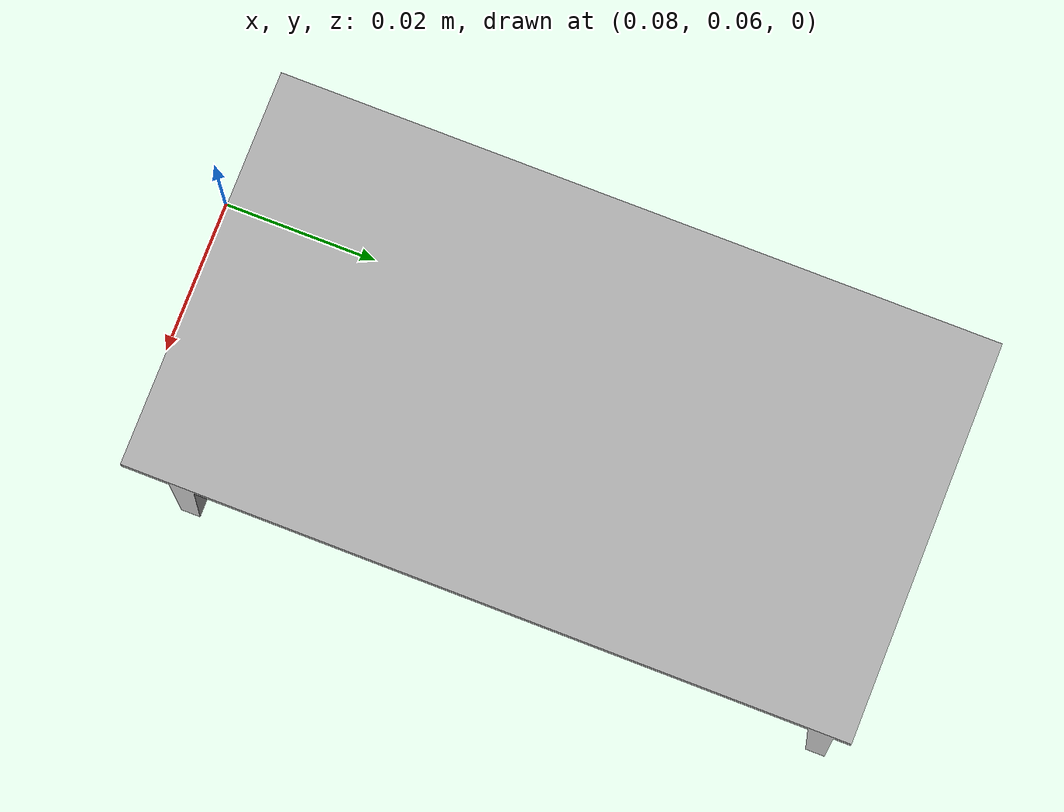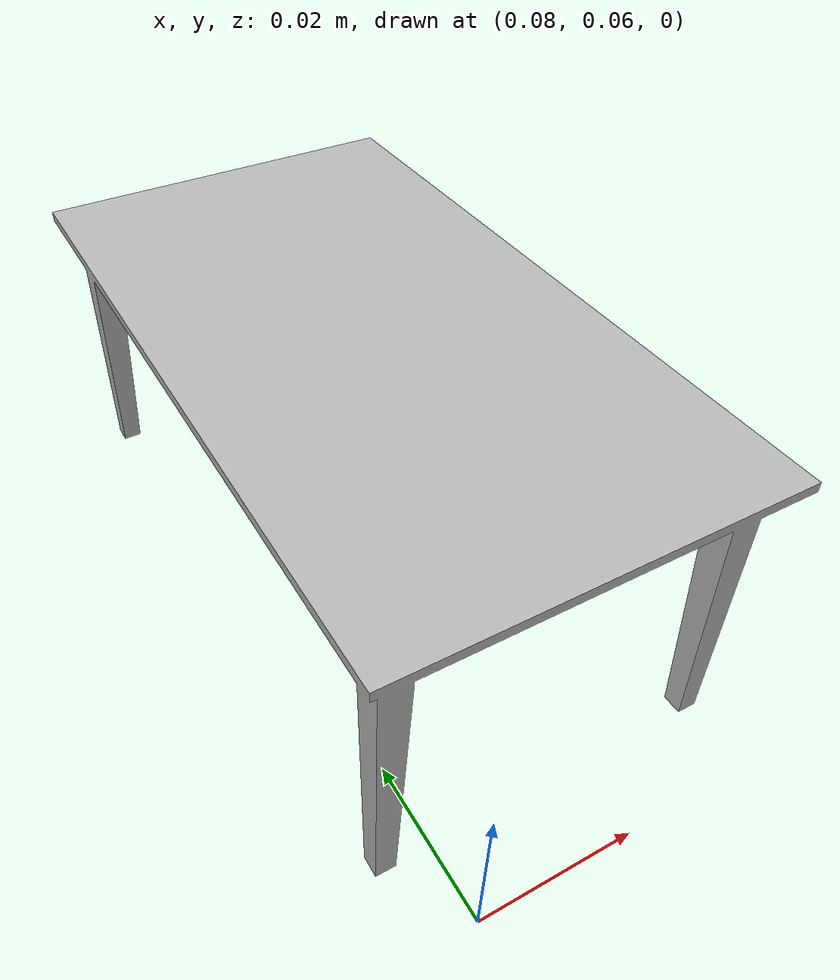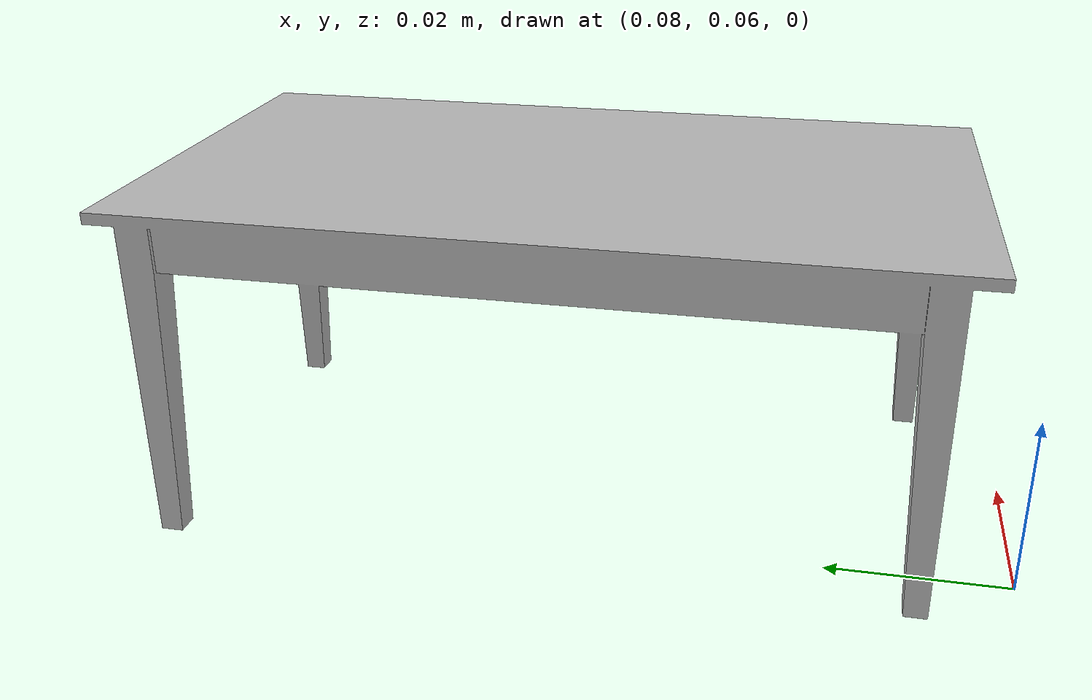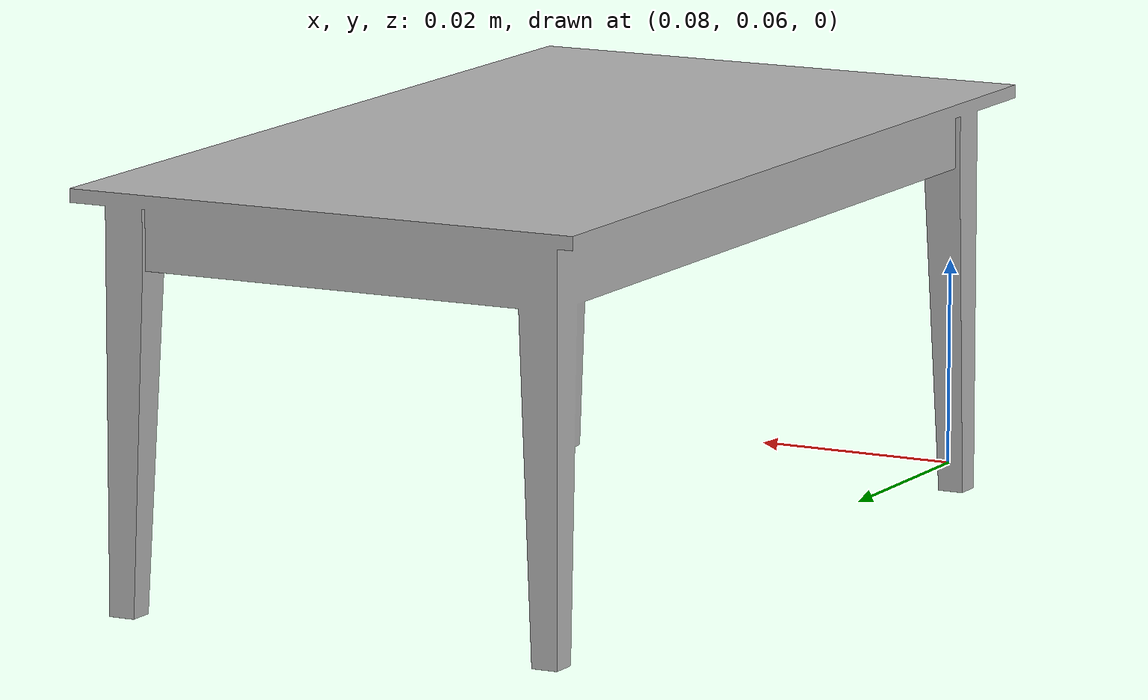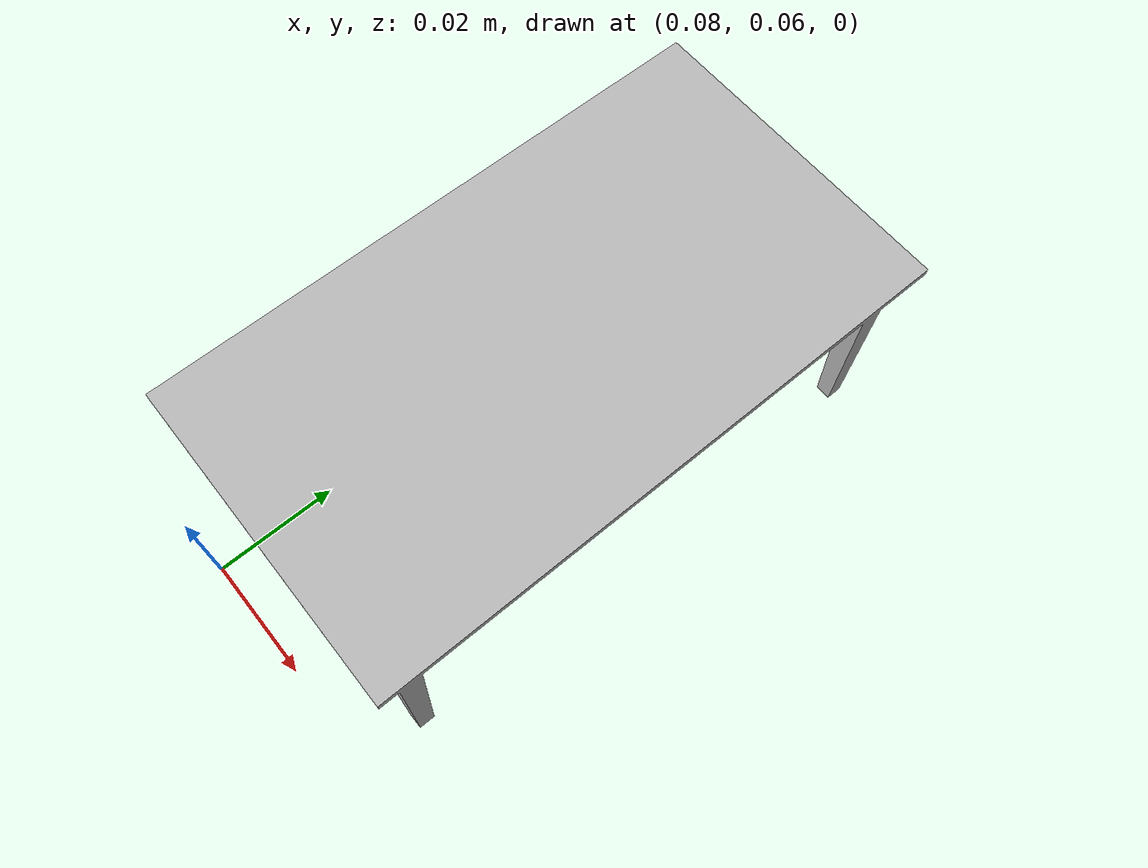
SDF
<?xml version="1.0" ?>
<sdf version="1.4">
  <model name="dining_table1">
    <link name="link">
      <visual name="visual">
        <pose>0 0 0 0 0 0</pose>
        <geometry>
          <mesh>
            <uri>model://dining_table1/meshes/dining_table1.dae</uri>
	    <scale>0.05 0.05 0.05</scale>
          </mesh>
        </geometry>
      </visual>
    </link>
    <static>1</static>
  </model>
</sdf>
